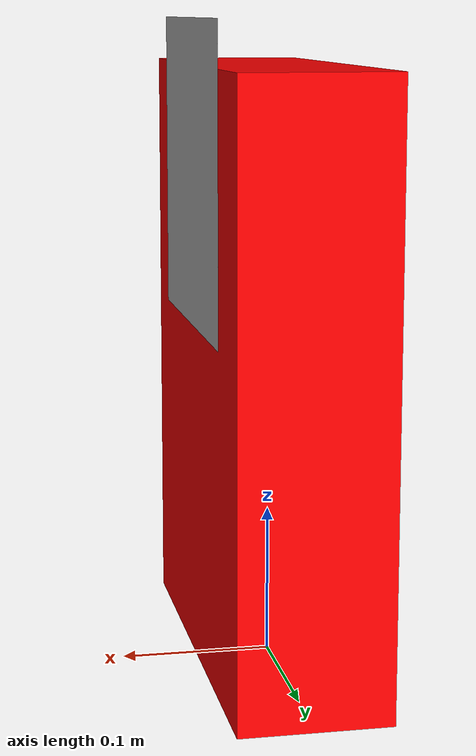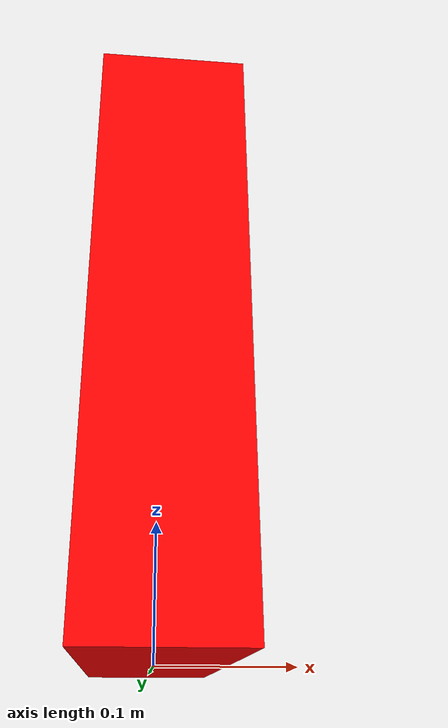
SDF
<?xml version='1.0'?>
<sdf version='1.7'>
  <model name='aruco_marker'>
    <link name='link'>
      <inertial>
        <pose>0 0 0 0 -0 0</pose>
        <mass>0.001</mass>
        <inertia>
          <ixx>3.75e-06</ixx>
          <ixy>0</ixy>
          <ixz>0</ixz>
          <iyy>1.88e-06</iyy>
          <iyz>0</iyz>
          <izz>1.88e-06</izz>
        </inertia>
      </inertial>
      <self_collide>0</self_collide>
      <enable_wind>0</enable_wind>
      <kinematic>0</kinematic>
      <pose>0 0 0 0 -0 0</pose>
      <gravity>1</gravity>
      <visual name='front_visual'>
        <pose>0.052 0 0.33 0 -0 0</pose>
        <geometry>
          <box>
            <size>0.0001 0.2 0.2</size>
          </box>
        </geometry>
        <material>
          <script>
            <uri>model://aruco_marker/materials/scripts</uri>
            <uri>model://aruco_marker/materials/textures</uri>
            <name>Marker</name>
          </script>
        </material>
        <transparency>0</transparency>
        <cast_shadows>1</cast_shadows>
      </visual>
      <visual name='rear_visual'>
        <pose>-5e-05 0 0.2 0 -0 0</pose>
        <geometry>
          <box>
            <size>0.1 0.3 0.4</size>
          </box>
        </geometry>
        <material>
          <script>
            <name>Gazebo/Grey</name>
            <uri>file://media/materials/scripts/gazebo.material</uri>
          </script>
          <shader type='pixel'>
            <normal_map>__default__</normal_map>
          </shader>
          <ambient>1 0 0 1</ambient>
          <diffuse>1 0 0 1</diffuse>
          <specular>0.1 0.1 0.1 1</specular>
          <emissive>0 0 0 1</emissive>
        </material>
        <transparency>0</transparency>
        <cast_shadows>1</cast_shadows>
      </visual>
      <collision name='collision'>
        <laser_retro>0</laser_retro>
        <max_contacts>10</max_contacts>
        <pose>0 0 0.2 0 -0 0</pose>
        <geometry>
          <box>
            <size>0.1 0.3 0.4</size>
          </box>
        </geometry>
        <surface>
          <friction>
            <ode>
              <mu>1</mu>
              <mu2>1</mu2>
              <fdir1>0 0 0</fdir1>
              <slip1>0</slip1>
              <slip2>0</slip2>
            </ode>
            <torsional>
              <coefficient>1</coefficient>
              <patch_radius>0</patch_radius>
              <surface_radius>0</surface_radius>
              <use_patch_radius>1</use_patch_radius>
              <ode>
                <slip>0</slip>
              </ode>
            </torsional>
          </friction>
          <bounce>
            <restitution_coefficient>0</restitution_coefficient>
            <threshold>1e+06</threshold>
          </bounce>
          <contact>
            <collide_without_contact>0</collide_without_contact>
            <collide_without_contact_bitmask>1</collide_without_contact_bitmask>
            <collide_bitmask>1</collide_bitmask>
            <ode>
              <soft_cfm>0</soft_cfm>
              <soft_erp>0.2</soft_erp>
              <kp>1e+13</kp>
              <kd>1</kd>
              <max_vel>0.01</max_vel>
              <min_depth>0</min_depth>
            </ode>
            <bullet>
              <split_impulse>1</split_impulse>
              <split_impulse_penetration_threshold>-0.01</split_impulse_penetration_threshold>
              <soft_cfm>0</soft_cfm>
              <soft_erp>0.2</soft_erp>
              <kp>1e+13</kp>
              <kd>1</kd>
            </bullet>
          </contact>
        </surface>
      </collision>
    </link>
    <static>1</static>
    <allow_auto_disable>1</allow_auto_disable>
  </model>
</sdf>
